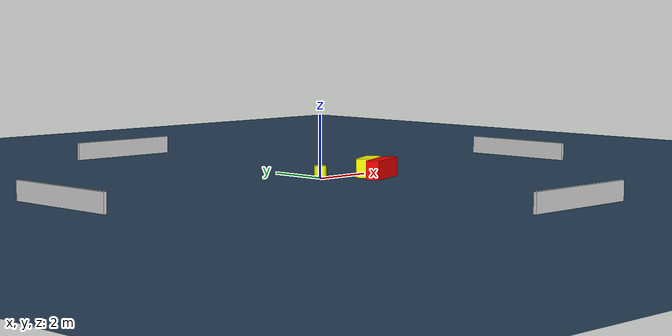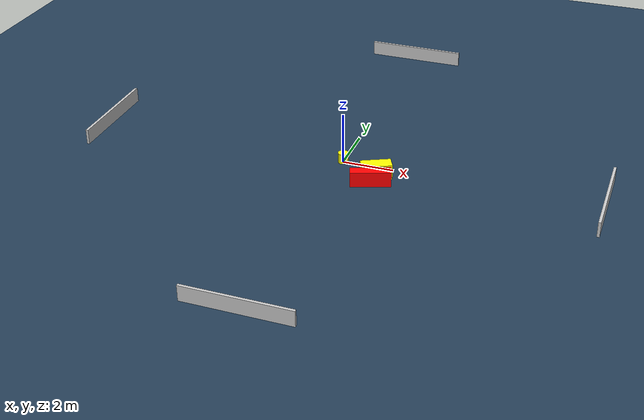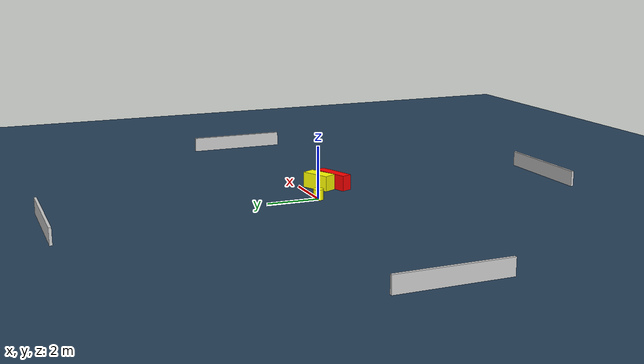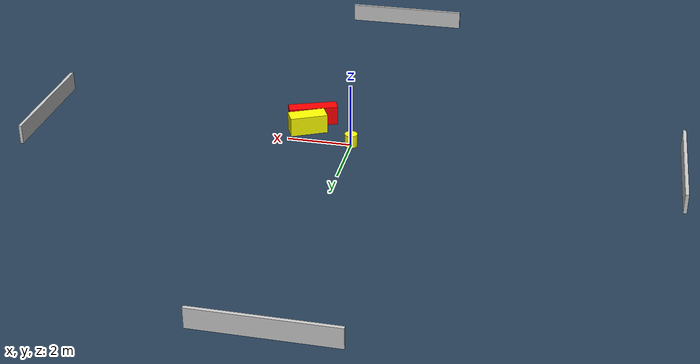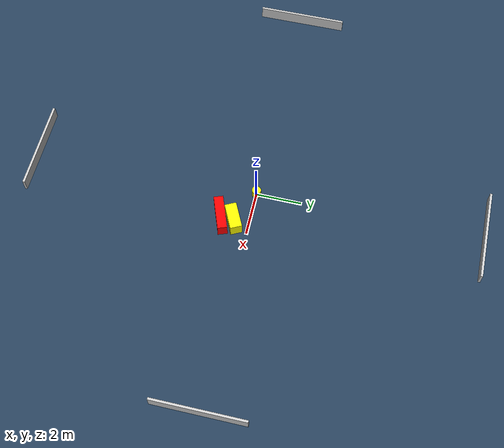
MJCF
<?xml version="1.0" ?>
<mujoco model="generated_environment">
  <option timestep="0.01" integrator="RK4" cone="elliptic"/>
  <default>
    <geom density="1"/>
  </default>
  <asset>
    <texture builtin="gradient" height="3072" name="skybox" rgb1="0.3 0.5 0.7" rgb2="0 0 0" type="skybox" width="512"/>
    <texture builtin="checker" height="300" name="groundplane" rgb1="0.2 0.3 0.4" rgb2="0.1 0.2 0.3" type="2d" width="300"/>
    <material name="groundplane" reflectance="0.2" texrepeat="5 5" texture="groundplane"/>
  </asset>
  <worldbody>
    <light dir="0 0 -1" directional="true" pos="0 0 1.5"/>
    <geom condim="3" friction="0.5 0.005 0.001" material="groundplane" name="floor" pos="0 0 0" size="0 0 0.05" type="plane"/>
    <body name="walls">
      <geom name="wall_1" condim="4" pos="-10.0 0.0 0.3" rgba="0.800000011920929 0.800000011920929 0.800000011920929 1.0" size="0.05 2.0 0.3" type="box"/>
      <geom name="wall_2" condim="4" pos="10.0 0.0 0.3" rgba="0.800000011920929 0.800000011920929 0.800000011920929 1.0" size="0.05 2.0 0.3" type="box"/>
      <geom name="wall_3" condim="4" pos="0.0 -10.0 0.3" rgba="0.800000011920929 0.800000011920929 0.800000011920929 1.0" size="2.0 0.05 0.3" type="box"/>
      <geom name="wall_4" condim="4" pos="0.0 10.0 0.3" rgba="0.800000011920929 0.800000011920929 0.800000011920929 1.0" size="2.0 0.05 0.3" type="box"/>
    </body>
    <body name="robot">
      <joint name="joint_x" type="slide" pos="0 0 0" axis="1 0 0"/>
      <joint name="joint_y" type="slide" pos="0 0 0" axis="0 1 0"/>
      <geom name="robot" type="cylinder" pos="0.0 0.0 0.2" size="0.2 0.2 0.0" mass="5.0" friction="1.0 0.005 0.0001" condim="4" rgba="1.0 1.0 0.0 1.0"/>
    </body>
    <body name="obstacle_1_movable">
      <geom name="obstacle_1_movable" condim="4" pos="1.5401675860581863 -0.6682837325928027 0.3" euler="0 0 296.0513312814337" friction="0.0 0.005 0.001" rgba="1.0 1.0 0.0 1.0" size="0.2592116711780031 0.5821023607615279 0.3" type="box" mass="0.1"/>
      <joint type="free"/>
    </body>
    <body name="obstacle_2_static">
      <geom name="obstacle_2_static" condim="4" pos="1.5053741547185309 -1.2473181067492176 0.3" euler="0 0 200.43137696913615" friction="0.0 0.005 0.001" rgba="1.0 0.0 0.0 1.0" size="0.7667926100782887 0.20960051165200158 0.3" type="box"/>
    </body>
  </worldbody>
  <actuator>
    <motor name="actuator_x" joint="joint_x" gear="1" ctrlrange="-1 1"/>
    <motor name="actuator_y" joint="joint_y" gear="1" ctrlrange="-1 1"/>
  </actuator>
</mujoco>
